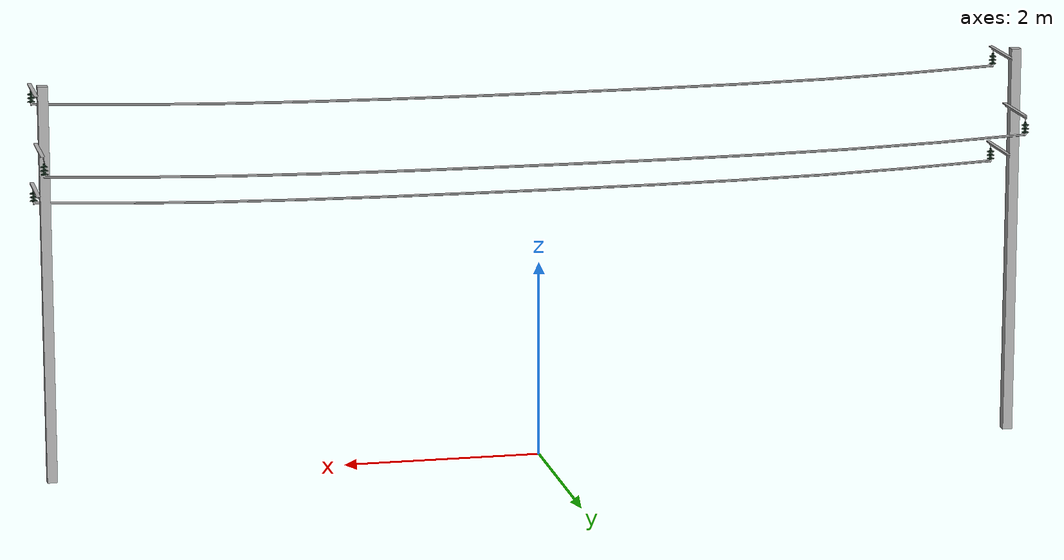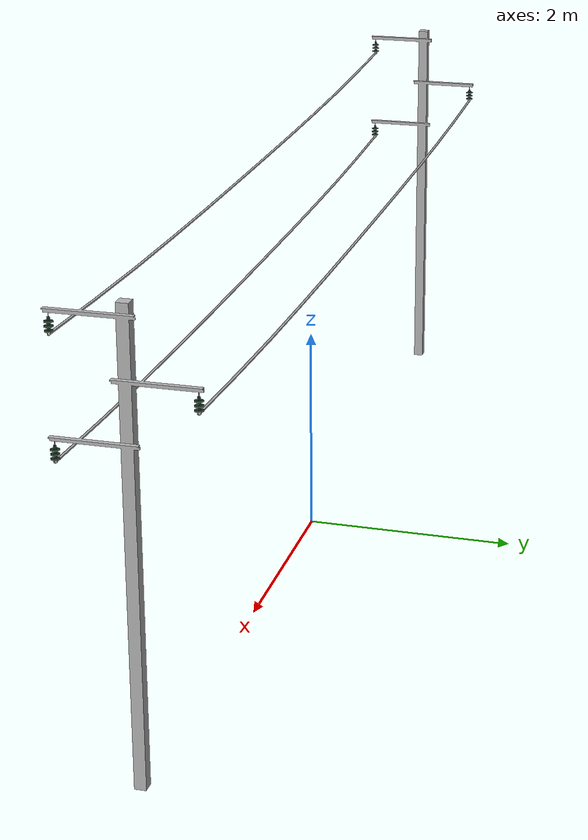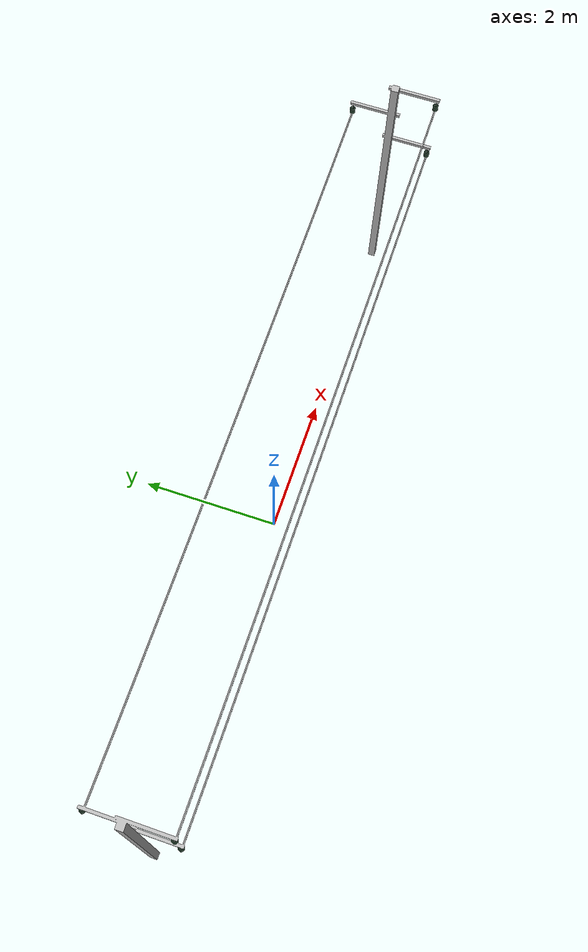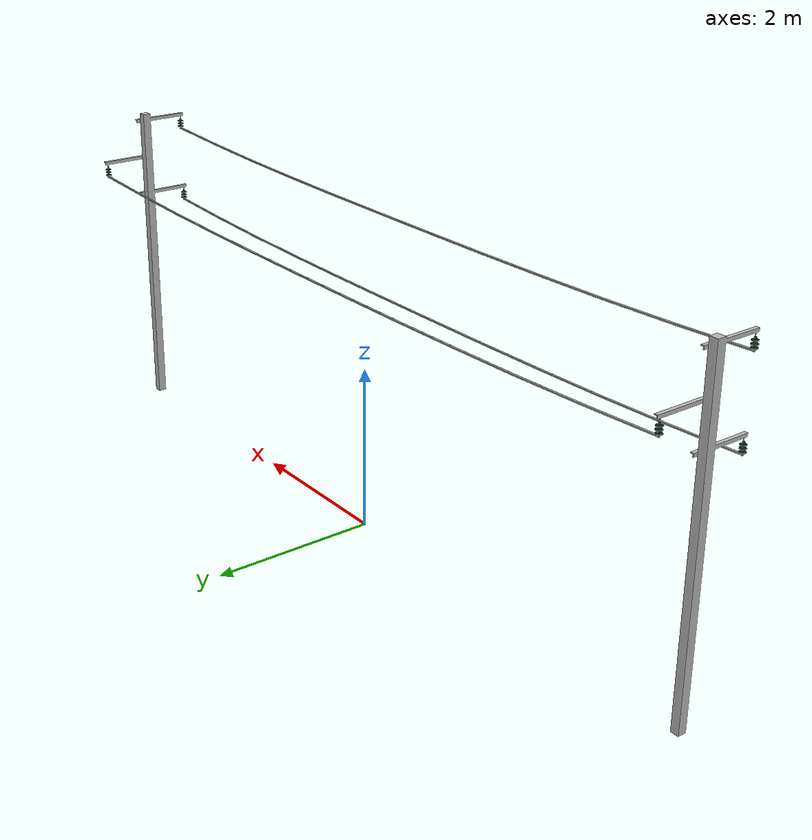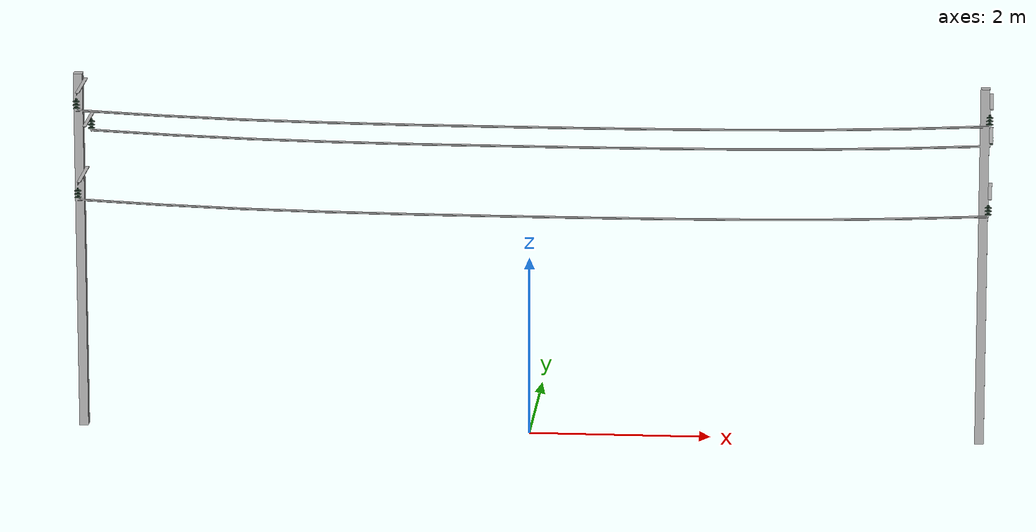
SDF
<?xml version="1.0" ?>
<sdf version="1.10">
  <model name="cable_tower">
    <static>true</static>
    <link name="link">
      <collision name="collision">
        <geometry>
          <mesh>
            <scale>1 1 1</scale>
            <uri>model://cable_tower/meshes/cable_tower.dae</uri>
          </mesh>
        </geometry>
      </collision>
      <visual name="visual">
        <geometry>
          <mesh>
            <scale>1 1 1</scale>
            <uri>model://cable_tower/meshes/cable_tower.dae</uri>
          </mesh>
        </geometry>
      </visual>
    </link>
  </model>
</sdf>
